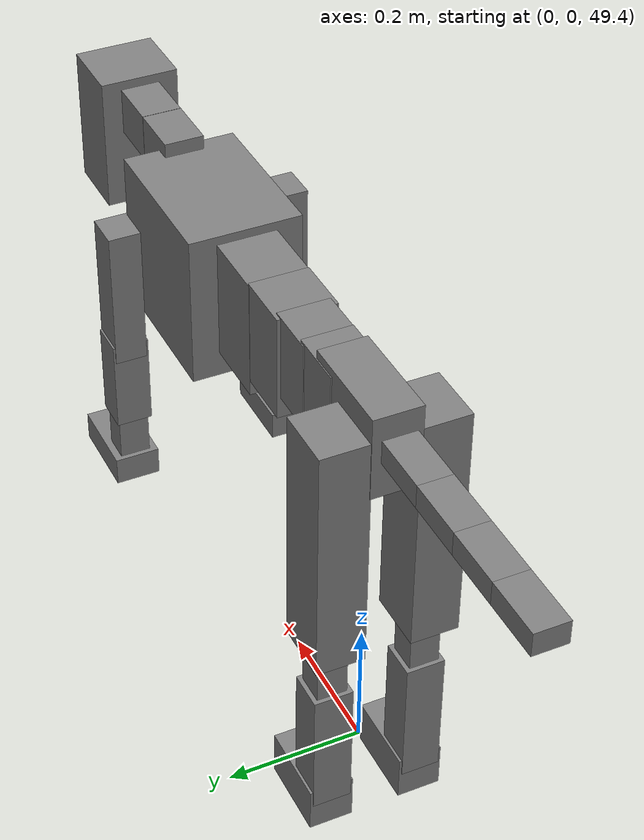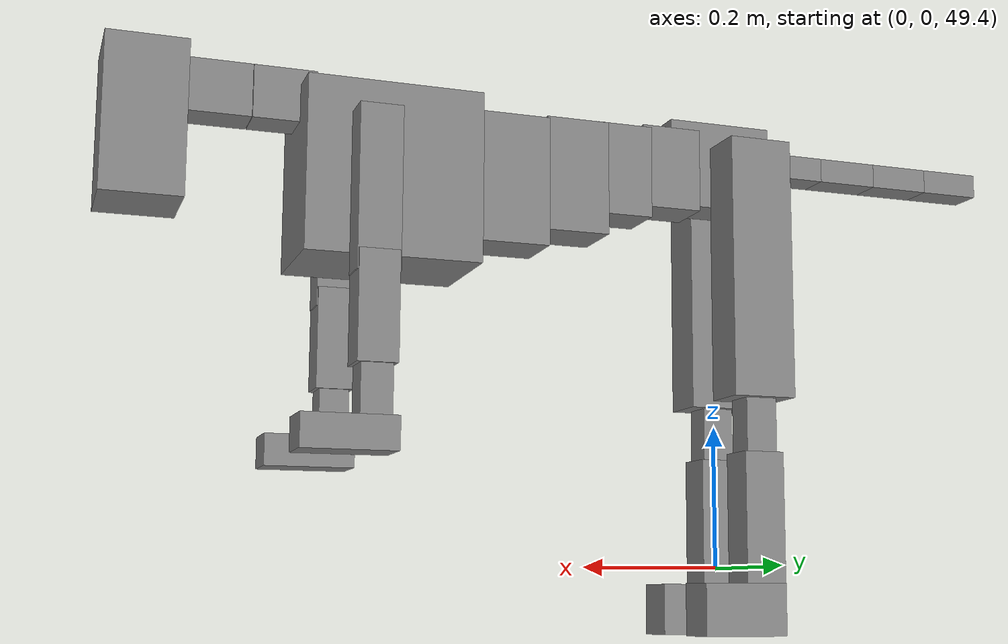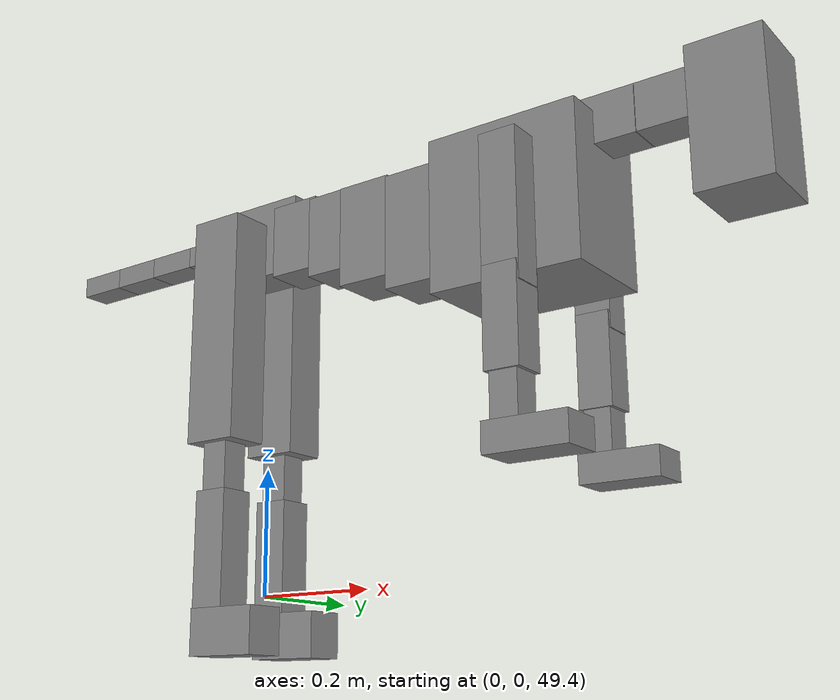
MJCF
<mujoco model="dog">

    <default>
        <joint armature="0.02" stiffness="1" damping="0.2" limited="true"/>
        <geom condim="3" friction="1 0.05 0.05" margin="0.01"/>
        <motor ctrllimited="true" ctrlrange="-1.0 1.0" forcelimited="true" gear="50"/>
    </default>

    <compiler inertiafromgeom="true" angle="radian"/>

    <option timestep="0.016" iterations="50" tolerance="1e-10" solver="Newton" jacobian="dense" cone="pyramidal"/>

    <size nconmax="20000" njmax="60000" nstack="5000000"/>
    <visual>
        <map force="0.1" zfar="30"/>
        <rgba haze="0.15 0.25 0.35 1"/>
        <quality shadowsize="2048"/>
        <global offwidth="800" offheight="800"/>
    </visual>

    <asset>
        <texture type="skybox" builtin="gradient" rgb1="0.3 0.5 0.7" rgb2="0 0 0" width="512" height="512"/>
        <texture name="texplane" type="2d" builtin="checker" rgb1=".2 .3 .4" rgb2=".1 0.15 0.2" width="512" height="512"
                 mark="cross" markrgb=".8 .8 .8"/>
        <texture name="texgeom" type="cube" builtin="flat" mark="cross" width="127" height="1278" rgb1="0.8 0.6 0.4"
                 rgb2="0.8 0.6 0.4" markrgb="1 1 1" random="0.01"/>

        <material name="matplane" reflectance="0.3" texture="texplane" texrepeat="1 1" texuniform="true"/>
        <material name="matgeom" texture="texgeom" texuniform="true" rgba="0.8 0.6 .4 1"/>
    </asset>

    <worldbody>
        <geom name="floor" pos="0 0 0" size="0 0 .25" type="plane" material="matplane" condim="3"/>

        <light directional="false" diffuse=".2 .2 .2" specular="0 0 0" pos="0 0 5" dir="0 0 -1" castshadow="false"/>
        <light mode="targetbodycom" target="torso" directional="false" diffuse=".8 .8 .8" specular="0.3 0.3 0.3"
               pos="0 0 4.0" dir="0 0 -1"/>

        <body name="root" pos="0 0 50">
            <freejoint name="root_1"/>
            <geom type="box" pos="0 0 -0.02" size="0.0774  0.0358  0.063" density="2030"/>

            <body name="spine1" pos="0.054 0 0">
                <joint name="spine1_y" axis="0 1 0" range="0 0.7" limited="true"/>
                <geom type="box" pos="0.02375 0 -0.03" size="0.04375  0.0375  0.05985" density="2030"/>

                <body name="spine2" pos="0.0612 0 0">
                    <joint name="spine2_y" axis="0 1 0" range="-0.15 0.15" limited="true"/>
                    <geom type="box" pos="0.03555  0  -0.04" size="0.04055  0.039  0.06615" density="2030"/>

                    <body name="spine3" pos="0.0730 0 0">
                        <joint name="spine3_y" axis="0 1 0" range="-0.15 0.15" limited="true"/>
                        <geom type="box" pos="0.03555  0  -0.057" size="0.04555  0.0445  0.081" density="2030"/>

                        <body name="spine4" pos="0.0780 0 0">
                            <joint name="spine4_y" axis="0 1 0" range="-0.15 0.15" limited="true"/>
                            <geom type="box" pos="0.05265  0  -0.07" size="0.05265  0.045  0.09135" density="2030"/>

                            <body name="torso" pos="0.1082 0 0">
                                <joint name="torso_y" axis="0 1 0" range="-0.15 0.15" limited="true"/>
                                <geom type="box" pos="0.11925  0  -0.085" size="0.11925  0.085  0.11745"
                                      density="2030"/>

                                <body name="neck1" pos="0.2160  0   0.0180">
                                    <joint name="neck1_y" axis="0 1 0" range="-1.2  -1" limited="true"/>
                                    <geom type="box" pos="0.0423  0  0" size="0.0423  0.03  0.036" density="2325"/>

                                    <body name="neck2" pos="0.0853  0  0">
                                        <joint name="neck2_y" axis="0 1 0" range="0.1  0" limited="true"/>
                                        <geom type="box" pos="0.0423  0  0" size="0.0423  0.03  0.036" density="2325"/>

                                        <body name="head" pos="0.0853  0  0">
                                            <joint name="head_y" axis="0 1 0" range="-0.3  -0.2" limited="true"/>
                                            <geom type="box" pos="0.0531  0  -0.055" size="0.0531  0.06  0.1044"
                                                  density="4030"/>

                                        </body>
                                    </body>
                                </body>

                                <body name="front_shoulder" pos="0.156  0   -0.0480">
                                    <joint name="front_shoulder_y" axis="0 1 0" range="-1 1.5" limited="true"/>
                                    <geom type="box" pos="0 0.13 -0.0813" size="0.0281  0.0240  0.1080" density="1158"/>
                                    <geom type="box" pos="0 -0.13 -0.0813" size="0.0281  0.0240  0.1080"
                                          density="1158"/>

                                    <body name="front_elbow" pos="0  0  -0.1626">
                                        <joint name="front_elbow_y" axis="0 1 0" range="-2 0" limited="true"/>
                                        <geom type="box" pos="0 0.13 -0.0717" size="0.0265  0.0271  0.0717"
                                              density="1081"/>
                                        <geom type="box" pos="0 -0.13 -0.0717" size="0.0265  0.0271  0.0717"
                                              density="1081"/>

                                        <body name="front_wrist" pos="0  0  -0.1434">
                                            <joint name="front_wrist_y" axis="0 1 0" range="-0.2 0" limited="true"/>
                                            <geom type="box" pos="0 0.13 -0.0404" size="0.0208  0.0231  0.0536"
                                                  density="1664"/>
                                            <geom type="box" pos="0 -0.13 -0.0404" size="0.0208  0.0231  0.0536"
                                                  density="1664"/>

                                            <body name="front_finger_end" pos="0  0  -0.0809">
                                                <joint name="front_finger_y" axis="0 1 0" range="-0.4 1"
                                                       limited="true"/>
                                                <geom type="box" pos="0.0340  0.13  -0.0071"
                                                      size="0.0623  0.0340  0.0221" density="1515"/>
                                                <geom type="box" pos="0.0340  -0.13  -0.0071"
                                                      size="0.0623  0.0340  0.0221" density="1515"/>

                                            </body>

                                        </body>
                                    </body>
                                </body>

                            </body>
                        </body>
                    </body>
                </body>
            </body>

            <body name="back_hip" pos="-0.03 0 -0.018">
                <joint name="back_hip_y" axis="0 1 0" range="-1.5 0.3" limited="true"/>
                <geom type="box" pos="0 0.07 -0.1621" size="0.0460  0.0361  0.1849" density="1154"/>
                <geom type="box" pos="0 -0.07 -0.1621" size="0.0460  0.0361  0.1849" density="1154"/>

                <body name="back_knee" pos="0  0  -0.3243">
                    <joint name="back_knee_y" axis="0 1 0" range="0 2.8" limited="true"/>
                    <geom type="box" pos="0 0.07 -0.0549" size="0.0227  0.0224  0.0704" density="1227"/>
                    <geom type="box" pos="0 -0.07 -0.0549" size="0.0227  0.0224  0.0704" density="1227"/>

                    <body name="back_ankle" pos="0  0  -0.1097">
                        <joint name="back_ankle_y" axis="0 1 0" range="-2.2 0" limited="true"/>
                        <geom type="box" pos="0 0.07 -0.0922" size="0.0291  0.0291  0.1034" density="1284"/>
                        <geom type="box" pos="0 -0.07 -0.0922" size="0.0291  0.0291  0.1034" density="1284"/>

                        <body name="back_toe_end" pos="0  0  -0.1844">
                            <joint name="back_toe_y" axis="0 1 0" range="-0.4 1" limited="true"/>
                            <geom type="box" pos="0.0329  0.07  -0.0208" size="0.0603  0.0329  0.0358" density="1515"/>
                            <geom type="box" pos="0.0329  -0.07  -0.0208" size="0.0603  0.0329  0.0358" density="1515"/>

                        </body>
                    </body>
                </body>
            </body>

            <body name="tail1" pos="-0.074 0 -0.006">
                <joint name="tail1_y" axis="0 1 0" range="-0.2 0.2" limited="true"/>
                <geom type="box" pos="-0.0536  0  0" size="0.045  0.025  0.0175" density="1587"/>

                <body name="tail2" pos="-0.09 0 0">
                    <joint name="tail2_y" axis="0 1 0" range="-0.2 0.2" limited="true"/>
                    <geom type="box" pos="-0.0536  0  0" size="0.045  0.025  0.0175" density="1587"/>

                    <body name="tail3" pos="-0.09 0 0">
                        <joint name="tail3_y" axis="0 1 0" range="-0.2 0.2" limited="true"/>
                        <geom type="box" pos="-0.0536  0  0" size="0.045  0.025  0.0175" density="1587"/>

                        <body name="tail4" pos="-0.09 0 0">
                            <joint name="tail4_y" axis="0 1 0" range="-0.2 0.2" limited="true"/>
                            <geom type="box" pos="-0.0536  0  0" size="0.045  0.025  0.0175" density="1587"/>

                        </body>
                    </body>
                </body>
            </body>
        </body>
    </worldbody>

    <actuator>
        <motor joint="spine1_y" forcerange="-150 150     "/>
        <motor joint="spine2_y" forcerange="-150 150     "/>
        <motor joint="spine3_y" forcerange="-150 150     "/>
        <motor joint="spine4_y" forcerange="-150 150     "/>
        <motor joint="torso_y" forcerange="-150 150     "/>
        <motor joint="neck1_y" forcerange="-100 100       "/>
        <motor joint="neck2_y" forcerange="-100 100       "/>
        <motor joint="head_y" forcerange="-150 150       "/>
        <motor joint="front_shoulder_y" forcerange="-154.26 105.92"/>
        <motor joint="front_elbow_y" forcerange="-193.98 102.95"/>
        <motor joint="front_wrist_y" forcerange="-62.85 121.79"/>
        <motor joint="front_finger_y" forcerange="-72.38 68.72"/>
        <motor joint="back_hip_y" forcerange="-316.16 364.70"/>
        <motor joint="back_knee_y" forcerange="-245.93 279.30"/>
        <motor joint="back_angle_y" forcerange="-193.96 171.07"/>
        <motor joint="back_toe_y" forcerange="-99.90 83.19"/>
        <motor joint="tail1_y" forcerange="-50 50     "/>
        <motor joint="tail2_y" forcerange="-50 50     "/>
        <motor joint="tail3_y" forcerange="-50 50     "/>
        <motor joint="tail4_y" forcerange="-50 50     "/>
    </actuator>
</mujoco>
